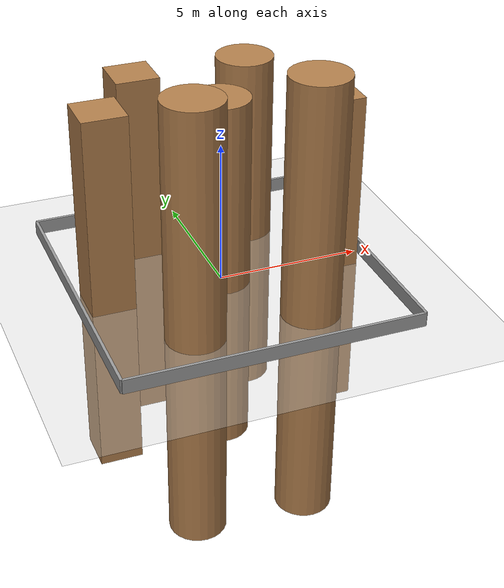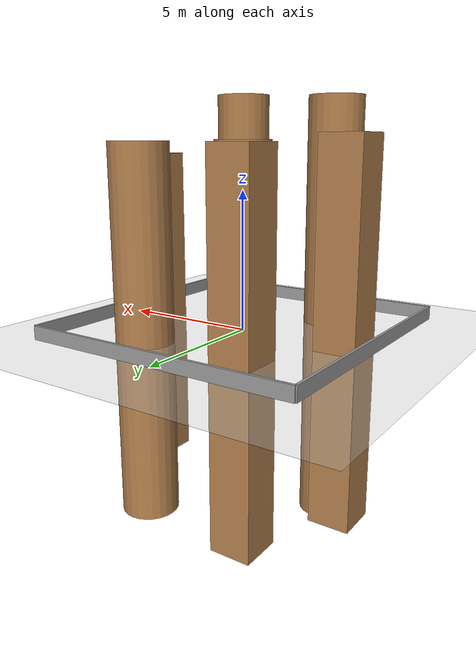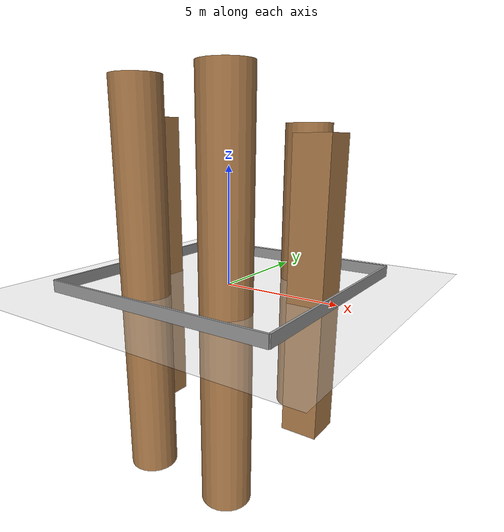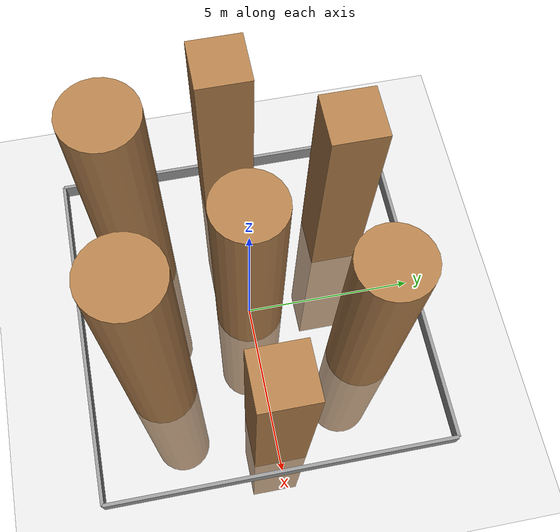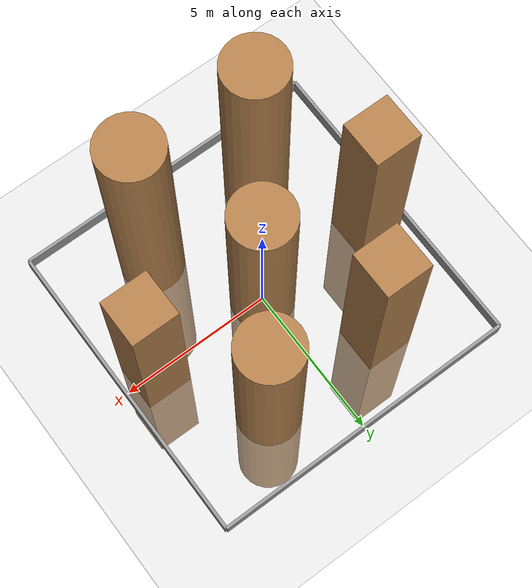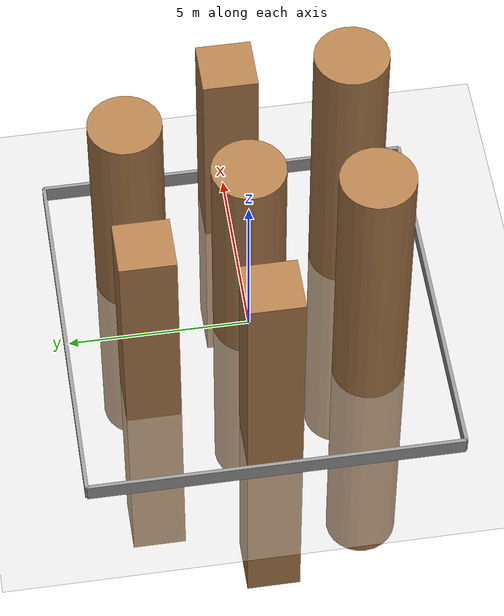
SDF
<sdf version="1.6">
 <world name="default">
  <light name="sun" type="directional">
   <pose>0 0 10 0 -0 0</pose>
   <diffuse>0.8 0.8 0.8 1</diffuse>
   <specular>0.1 0.1 0.1 1</specular>
   <attenuation>
    <range>1000</range>
    <constant>0.9</constant>
    <linear>0.01</linear>
    <quadratic>0.001</quadratic>
   </attenuation>
   <direction>-0.5 0.5 -1</direction>
  </light>
  <model name="ground_plane">
   <static>1</static>
   <link name="link">
    <collision name="collision">
     <geometry><plane><normal>0 0 1</normal><size>100 100</size></plane></geometry>
     <surface><friction><ode><mu>100</mu><mu2>50</mu2></ode></friction></surface>
    </collision>
    <visual name="visual">
     <cast_shadows>0</cast_shadows>
     <geometry><plane><normal>0 0 1</normal><size>100 100</size></plane></geometry>
     <material>
      <script><uri>file://media/materials/scripts/gazebo.material</uri><name>Gazebo/Grey</name></script>
     </material>
    </visual>
   </link>
  </model>
  <gravity>0 0 -9.8</gravity>
  <magnetic_field>6e-06 2.3e-05 -4.2e-05</magnetic_field>
  <atmosphere type="adiabatic"/>
  <physics name="default_physics" default="0" type="ode">
   <max_step_size>0.001</max_step_size>
   <real_time_factor>1</real_time_factor>
   <real_time_update_rate>1000</real_time_update_rate>
  </physics>
  <scene><ambient>0.4 0.4 0.4 1</ambient><background>0.7 0.7 0.7 1</background><shadows>1</shadows></scene>
  <spherical_coordinates>
   <surface_model>EARTH_WGS84</surface_model>
   <latitude_deg>0</latitude_deg>
   <longitude_deg>0</longitude_deg>
   <elevation>0</elevation>
   <heading_deg>0</heading_deg>
  </spherical_coordinates>
  <model name="grey_wall">
   <static>1</static>
   <link name="link">
    <pose>0 0 1.4 0 -0 0</pose>
    <collision name="collision"><geometry><box><size>10.2 0.1 0.5</size></box></geometry></collision>
    <visual name="visual">
     <cast_shadows>0</cast_shadows>
     <geometry><box><size>10.2 0.1 0.5</size></box></geometry>
     <material>
      <script>
       <uri>model://grey_wall/materials/scripts</uri>
       <uri>model://grey_wall/materials/textures</uri>
       <name>vrc/grey_wall</name>
      </script>
     </material>
    </visual>
   </link>
   <pose>0 -5.1 -1.1 0 -0 0</pose>
  </model>
  <model name="grey_wall_0">
   <static>1</static>
   <link name="link">
    <pose>0 0 1.4 0 -0 0</pose>
    <collision name="collision"><geometry><box><size>10.2 0.1 0.5</size></box></geometry></collision>
    <visual name="visual">
     <cast_shadows>0</cast_shadows>
     <geometry><box><size>10.2 0.1 0.5</size></box></geometry>
     <material>
      <script>
       <uri>model://grey_wall/materials/scripts</uri>
       <uri>model://grey_wall/materials/textures</uri>
       <name>vrc/grey_wall</name>
      </script>
     </material>
    </visual>
   </link>
   <pose>5.1 0 -1.1 0 -0 1.57</pose>
  </model>
  <model name="grey_wall_0_clone">
   <static>1</static>
   <link name="link">
    <pose>0 0 1.4 0 -0 0</pose>
    <collision name="collision"><geometry><box><size>10.2 0.1 0.5</size></box></geometry></collision>
    <visual name="visual">
     <cast_shadows>0</cast_shadows>
     <geometry><box><size>10.2 0.1 0.5</size></box></geometry>
     <material>
      <script>
       <uri>model://grey_wall/materials/scripts</uri>
       <uri>model://grey_wall/materials/textures</uri>
       <name>vrc/grey_wall</name>
      </script>
     </material>
    </visual>
   </link>
   <pose>-5.1 0 -1.1 0 -0 1.57</pose>
  </model>
  <model name="grey_wall_clone">
   <static>1</static>
   <link name="link">
    <pose>0 0 1.4 0 -0 0</pose>
    <collision name="collision"><geometry><box><size>10.2 0.1 0.5</size></box></geometry></collision>
    <visual name="visual">
     <cast_shadows>0</cast_shadows>
     <geometry><box><size>10.2 0.1 0.5</size></box></geometry>
     <material>
      <script>
       <uri>model://grey_wall/materials/scripts</uri>
       <uri>model://grey_wall/materials/textures</uri>
       <name>vrc/grey_wall</name>
      </script>
     </material>
    </visual>
   </link>
   <pose>0 5.1 -1.1 0 -0 0</pose>
  </model>
  <model name="wooden_peg_clone_0">
   <link name="link">
    <pose>0 0 -1.1 0 -0 0</pose>
    <inertial>
     <mass>20.105</mass>
     <inertia><ixx>438.443</ixx><ixy>0</ixy><ixz>0</ixz><iyy>438.443</iyy><iyz>0</iyz><izz>10.0525</izz></inertia>
    </inertial>
    <visual name="visual">
     <geometry><cylinder><radius>1</radius><length>16.0839</length></cylinder></geometry>
     <material>
      <script><uri>file://media/materials/scripts/gazebo.material</uri><name>Gazebo/Wood</name></script>
      <shader type="pixel"/>
     </material>
    </visual>
    <collision name="collision">
     <geometry><cylinder><radius>1</radius><length>16.0839</length></cylinder></geometry>
     <surface>
      <friction>
       <ode><mu>1</mu><mu2>1</mu2><fdir1>0 0 0</fdir1><slip1>0</slip1><slip2>0</slip2></ode>
       <torsional>
        <coefficient>1</coefficient>
        <patch_radius>0</patch_radius>
        <surface_radius>0.01</surface_radius>
        <use_patch_radius>0</use_patch_radius>
        <ode><slip>0</slip></ode>
       </torsional>
      </friction>
      <bounce><restitution_coefficient>0</restitution_coefficient><threshold>1e+06</threshold></bounce>
      <contact>
       <collide_without_contact>0</collide_without_contact>
       <collide_without_contact_bitmask>1</collide_without_contact_bitmask>
       <collide_bitmask>1</collide_bitmask>
       <ode>
        <soft_cfm>0</soft_cfm>
        <soft_erp>0.2</soft_erp>
        <kp>100000</kp>
        <kd>100</kd>
        <max_vel>0</max_vel>
        <min_depth>0.001</min_depth>
       </ode>
       <bullet>
        <split_impulse>1</split_impulse>
        <split_impulse_penetration_threshold>-0.01</split_impulse_penetration_threshold>
        <soft_cfm>0</soft_cfm>
        <soft_erp>0.2</soft_erp>
        <kp>100000</kp>
        <kd>100</kd>
       </bullet>
      </contact>
     </surface>
    </collision>
   </link>
   <static>1</static>
   <pose>-2 -3 1.3 0 -0 0</pose>
  </model>
  <model name="wooden_peg_clone_0_clone">
   <link name="link">
    <pose>0 0 -1.1 0 -0 0</pose>
    <inertial>
     <mass>20.4594</mass>
     <inertia><ixx>461.874</ixx><ixy>0</ixy><ixz>0</ixz><iyy>461.874</iyy><iyz>0</iyz><izz>10.2297</izz></inertia>
    </inertial>
    <visual name="visual">
     <geometry><cylinder><radius>1</radius><length>16.3677</length></cylinder></geometry>
     <material>
      <script><uri>file://media/materials/scripts/gazebo.material</uri><name>Gazebo/Wood</name></script>
      <shader type="pixel"/>
     </material>
    </visual>
    <collision name="collision">
     <geometry><cylinder><radius>1</radius><length>16.3677</length></cylinder></geometry>
     <surface>
      <friction>
       <ode><mu>1</mu><mu2>1</mu2><fdir1>0 0 0</fdir1><slip1>0</slip1><slip2>0</slip2></ode>
       <torsional>
        <coefficient>1</coefficient>
        <patch_radius>0</patch_radius>
        <surface_radius>0.01</surface_radius>
        <use_patch_radius>0</use_patch_radius>
        <ode><slip>0</slip></ode>
       </torsional>
      </friction>
      <bounce><restitution_coefficient>0</restitution_coefficient><threshold>1e+06</threshold></bounce>
      <contact>
       <collide_without_contact>0</collide_without_contact>
       <collide_without_contact_bitmask>1</collide_without_contact_bitmask>
       <collide_bitmask>1</collide_bitmask>
       <ode>
        <soft_cfm>0</soft_cfm>
        <soft_erp>0.2</soft_erp>
        <kp>100000</kp>
        <kd>100</kd>
        <max_vel>0</max_vel>
        <min_depth>0.001</min_depth>
       </ode>
       <bullet>
        <split_impulse>1</split_impulse>
        <split_impulse_penetration_threshold>-0.01</split_impulse_penetration_threshold>
        <soft_cfm>0</soft_cfm>
        <soft_erp>0.2</soft_erp>
        <kp>100000</kp>
        <kd>100</kd>
       </bullet>
      </contact>
     </surface>
    </collision>
   </link>
   <static>1</static>
   <pose>2 -3 1.3 0 -0 0</pose>
  </model>
  <model name="wood_cube_10cm_clone_0">
   <link name="link">
    <pose>0 0 0.05 0 -0 0</pose>
    <inertial>
     <mass>7.59529</mass>
     <inertia><ixx>88.9535</ixx><ixy>0</ixy><ixz>0</ixz><iyy>88.9535</iyy><iyz>0</iyz><izz>2.84823</izz></inertia>
    </inertial>
    <visual name="visual">
     <geometry><box><size>1.5 1.5 11.7597</size></box></geometry>
     <material>
      <script><uri>file://media/materials/scripts/gazebo.material</uri><name>Gazebo/Wood</name></script>
      <shader type="pixel"/>
     </material>
    </visual>
    <collision name="collision">
     <geometry><box><size>1.5 1.5 11.7597</size></box></geometry>
     <surface>
      <friction>
       <ode><mu>1</mu><mu2>1</mu2><fdir1>0 0 0</fdir1><slip1>0</slip1><slip2>0</slip2></ode>
       <torsional>
        <coefficient>1</coefficient>
        <patch_radius>0</patch_radius>
        <surface_radius>0.01</surface_radius>
        <use_patch_radius>0</use_patch_radius>
        <ode><slip>0</slip></ode>
       </torsional>
      </friction>
      <bounce><restitution_coefficient>0</restitution_coefficient><threshold>1e+06</threshold></bounce>
      <contact>
       <collide_without_contact>0</collide_without_contact>
       <collide_without_contact_bitmask>1</collide_without_contact_bitmask>
       <collide_bitmask>1</collide_bitmask>
       <ode>
        <soft_cfm>0</soft_cfm>
        <soft_erp>0.2</soft_erp>
        <kp>100000</kp>
        <kd>100</kd>
        <max_vel>100</max_vel>
        <min_depth>0.001</min_depth>
       </ode>
       <bullet>
        <split_impulse>1</split_impulse>
        <split_impulse_penetration_threshold>-0.01</split_impulse_penetration_threshold>
        <soft_cfm>0</soft_cfm>
        <soft_erp>0.2</soft_erp>
        <kp>100000</kp>
        <kd>100</kd>
       </bullet>
      </contact>
     </surface>
    </collision>
   </link>
   <static>1</static>
   <pose>4 0 0.3 0 -0 0</pose>
  </model>
  <model name="wooden_peg">
   <link name="link">
    <pose>0 0 -1.1 0 -0 0</pose>
    <inertial>
     <mass>16.2652</mass>
     <inertia><ixx>233.563</ixx><ixy>0</ixy><ixz>0</ixz><iyy>233.563</iyy><iyz>0</iyz><izz>8.1326</izz></inertia>
    </inertial>
    <visual name="visual">
     <geometry><cylinder><radius>1</radius><length>13.0122</length></cylinder></geometry>
     <material>
      <script><uri>file://media/materials/scripts/gazebo.material</uri><name>Gazebo/Wood</name></script>
      <shader type="pixel"/>
     </material>
    </visual>
    <collision name="collision">
     <geometry><cylinder><radius>1</radius><length>13.0122</length></cylinder></geometry>
     <surface>
      <friction>
       <ode><mu>1</mu><mu2>1</mu2><fdir1>0 0 0</fdir1><slip1>0</slip1><slip2>0</slip2></ode>
       <torsional>
        <coefficient>1</coefficient>
        <patch_radius>0</patch_radius>
        <surface_radius>0.01</surface_radius>
        <use_patch_radius>0</use_patch_radius>
        <ode><slip>0</slip></ode>
       </torsional>
      </friction>
      <bounce><restitution_coefficient>0</restitution_coefficient><threshold>1e+06</threshold></bounce>
      <contact>
       <collide_without_contact>0</collide_without_contact>
       <collide_without_contact_bitmask>1</collide_without_contact_bitmask>
       <collide_bitmask>1</collide_bitmask>
       <ode>
        <soft_cfm>0</soft_cfm>
        <soft_erp>0.2</soft_erp>
        <kp>100000</kp>
        <kd>100</kd>
        <max_vel>0</max_vel>
        <min_depth>0.001</min_depth>
       </ode>
       <bullet>
        <split_impulse>1</split_impulse>
        <split_impulse_penetration_threshold>-0.01</split_impulse_penetration_threshold>
        <soft_cfm>0</soft_cfm>
        <soft_erp>0.2</soft_erp>
        <kp>100000</kp>
        <kd>100</kd>
       </bullet>
      </contact>
     </surface>
    </collision>
   </link>
   <static>1</static>
   <pose>0 0 1.3 0 -0 0</pose>
  </model>
  <model name="wood_cube_10cm">
   <link name="link">
    <pose>0 0 0.05 0 -0 0</pose>
    <inertial>
     <mass>8.4741</mass>
     <inertia><ixx>123.153</ixx><ixy>0</ixy><ixz>0</ixz><iyy>123.153</iyy><iyz>0</iyz><izz>3.17779</izz></inertia>
    </inertial>
    <visual name="visual">
     <geometry><box><size>1.5 1.5 13.1204</size></box></geometry>
     <material>
      <script><uri>file://media/materials/scripts/gazebo.material</uri><name>Gazebo/Wood</name></script>
      <shader type="pixel"/>
     </material>
    </visual>
    <collision name="collision">
     <geometry><box><size>1.5 1.5 13.1204</size></box></geometry>
     <surface>
      <friction>
       <ode><mu>1</mu><mu2>1</mu2><fdir1>0 0 0</fdir1><slip1>0</slip1><slip2>0</slip2></ode>
       <torsional>
        <coefficient>1</coefficient>
        <patch_radius>0</patch_radius>
        <surface_radius>0.01</surface_radius>
        <use_patch_radius>0</use_patch_radius>
        <ode><slip>0</slip></ode>
       </torsional>
      </friction>
      <bounce><restitution_coefficient>0</restitution_coefficient><threshold>1e+06</threshold></bounce>
      <contact>
       <collide_without_contact>0</collide_without_contact>
       <collide_without_contact_bitmask>1</collide_without_contact_bitmask>
       <collide_bitmask>1</collide_bitmask>
       <ode>
        <soft_cfm>0</soft_cfm>
        <soft_erp>0.2</soft_erp>
        <kp>100000</kp>
        <kd>100</kd>
        <max_vel>100</max_vel>
        <min_depth>0.001</min_depth>
       </ode>
       <bullet>
        <split_impulse>1</split_impulse>
        <split_impulse_penetration_threshold>-0.01</split_impulse_penetration_threshold>
        <soft_cfm>0</soft_cfm>
        <soft_erp>0.2</soft_erp>
        <kp>100000</kp>
        <kd>100</kd>
       </bullet>
      </contact>
     </surface>
    </collision>
   </link>
   <static>1</static>
   <pose>-4 0 0.3 0 -0 0</pose>
  </model>
  <model name="wood_cube_10cm_clone_1">
   <link name="link">
    <pose>0 0 0.05 0 -0 0</pose>
    <inertial>
     <mass>8.45955</mass>
     <inertia><ixx>122.524</ixx><ixy>0</ixy><ixz>0</ixz><iyy>122.524</iyy><iyz>0</iyz><izz>3.17233</izz></inertia>
    </inertial>
    <visual name="visual">
     <geometry><box><size>1.5 1.5 13.0978</size></box></geometry>
     <material>
      <script><uri>file://media/materials/scripts/gazebo.material</uri><name>Gazebo/Wood</name></script>
      <shader type="pixel"/>
     </material>
    </visual>
    <collision name="collision">
     <geometry><box><size>1.5 1.5 13.0978</size></box></geometry>
     <surface>
      <friction>
       <ode><mu>1</mu><mu2>1</mu2><fdir1>0 0 0</fdir1><slip1>0</slip1><slip2>0</slip2></ode>
       <torsional>
        <coefficient>1</coefficient>
        <patch_radius>0</patch_radius>
        <surface_radius>0.01</surface_radius>
        <use_patch_radius>0</use_patch_radius>
        <ode><slip>0</slip></ode>
       </torsional>
      </friction>
      <bounce><restitution_coefficient>0</restitution_coefficient><threshold>1e+06</threshold></bounce>
      <contact>
       <collide_without_contact>0</collide_without_contact>
       <collide_without_contact_bitmask>1</collide_without_contact_bitmask>
       <collide_bitmask>1</collide_bitmask>
       <ode>
        <soft_cfm>0</soft_cfm>
        <soft_erp>0.2</soft_erp>
        <kp>100000</kp>
        <kd>100</kd>
        <max_vel>100</max_vel>
        <min_depth>0.001</min_depth>
       </ode>
       <bullet>
        <split_impulse>1</split_impulse>
        <split_impulse_penetration_threshold>-0.01</split_impulse_penetration_threshold>
        <soft_cfm>0</soft_cfm>
        <soft_erp>0.2</soft_erp>
        <kp>100000</kp>
        <kd>100</kd>
       </bullet>
      </contact>
     </surface>
    </collision>
   </link>
   <static>1</static>
   <pose>-2 3 0.03 0 -0 0</pose>
  </model>
  <model name="wooden_peg_clone">
   <link name="link">
    <pose>0 0 -1.1 0 -0 0</pose>
    <inertial>
     <mass>16.1238</mass>
     <inertia><ixx>227.595</ixx><ixy>0</ixy><ixz>0</ixz><iyy>227.595</iyy><iyz>0</iyz><izz>8.0619</izz></inertia>
    </inertial>
    <visual name="visual">
     <geometry><cylinder><radius>1</radius><length>12.8991</length></cylinder></geometry>
     <material>
      <script><uri>file://media/materials/scripts/gazebo.material</uri><name>Gazebo/Wood</name></script>
      <shader type="pixel"/>
     </material>
    </visual>
    <collision name="collision">
     <geometry><cylinder><radius>1</radius><length>12.8991</length></cylinder></geometry>
     <surface>
      <friction>
       <ode><mu>1</mu><mu2>1</mu2><fdir1>0 0 0</fdir1><slip1>0</slip1><slip2>0</slip2></ode>
       <torsional>
        <coefficient>1</coefficient>
        <patch_radius>0</patch_radius>
        <surface_radius>0.01</surface_radius>
        <use_patch_radius>0</use_patch_radius>
        <ode><slip>0</slip></ode>
       </torsional>
      </friction>
      <bounce><restitution_coefficient>0</restitution_coefficient><threshold>1e+06</threshold></bounce>
      <contact>
       <collide_without_contact>0</collide_without_contact>
       <collide_without_contact_bitmask>1</collide_without_contact_bitmask>
       <collide_bitmask>1</collide_bitmask>
       <ode>
        <soft_cfm>0</soft_cfm>
        <soft_erp>0.2</soft_erp>
        <kp>100000</kp>
        <kd>100</kd>
        <max_vel>0</max_vel>
        <min_depth>0.001</min_depth>
       </ode>
       <bullet>
        <split_impulse>1</split_impulse>
        <split_impulse_penetration_threshold>-0.01</split_impulse_penetration_threshold>
        <soft_cfm>0</soft_cfm>
        <soft_erp>0.2</soft_erp>
        <kp>100000</kp>
        <kd>100</kd>
       </bullet>
      </contact>
     </surface>
    </collision>
   </link>
   <static>1</static>
   <pose>2 3 1.3 0 -0 0</pose>
  </model>
 </world>
</sdf>
